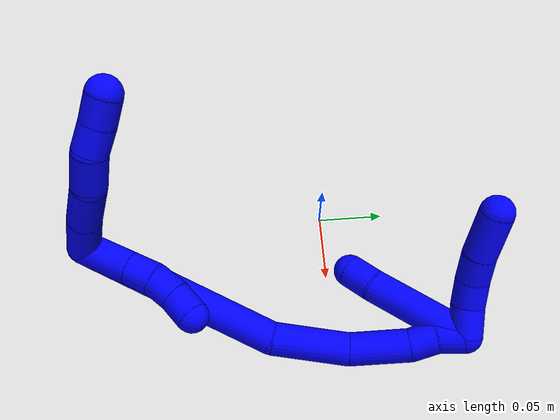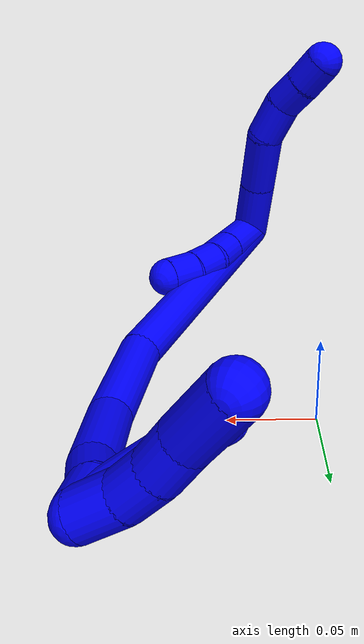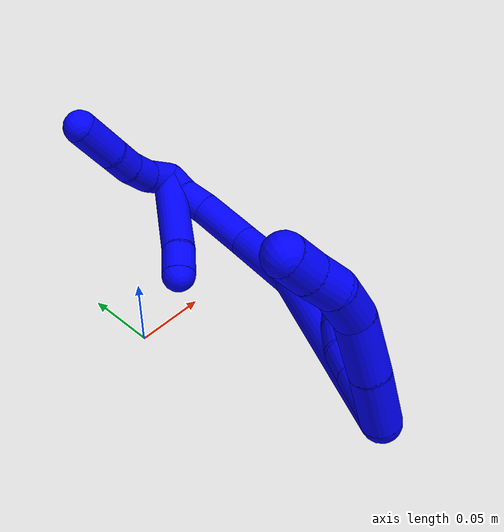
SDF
<sdf version="1.7">
 <world name="default">
  <model name="1">
   <static>0</static>
   <link name="1">
    <collision name="collision-cylinder-e_1_2_8">
     <pose>0.004787 -0.019817 -0.002743 1.70833 0.234888 0.269245</pose>
     <geometry><cylinder><radius>0.0125</radius><length>0.041141</length></cylinder></geometry>
     <surface>
      <friction><ode><mu>1.16</mu><mu2>1.16</mu2><slip1>0</slip1><slip2>0</slip2></ode></friction>
      <contact><ode><kp>1e+06</kp><kd>1</kd><max_vel>0</max_vel><min_depth>0.001</min_depth></ode></contact>
     </surface>
    </collision>
    <visual name="visual-cylinder-e_1_2_8">
     <pose>0.004787 -0.019817 -0.002743 1.70833 0.234888 0.269245</pose>
     <geometry><cylinder><radius>0.0125</radius><length>0.041141</length></cylinder></geometry>
     <material><ambient>0 0 1 1</ambient></material>
    </visual>
    <collision name="collision-cylinder-e_2_8_9">
     <pose>0.014733 -0.05925 -0.00943 1.7692 0.252291 0.307268</pose>
     <geometry><cylinder><radius>0.0125</radius><length>0.041328</length></cylinder></geometry>
     <surface>
      <friction><ode><mu>1.16</mu><mu2>1.16</mu2><slip1>0</slip1><slip2>0</slip2></ode></friction>
      <contact><ode><kp>1e+06</kp><kd>1</kd><max_vel>0</max_vel><min_depth>0.001</min_depth></ode></contact>
     </surface>
    </collision>
    <visual name="visual-cylinder-e_2_8_9">
     <pose>0.014733 -0.05925 -0.00943 1.7692 0.252291 0.307268</pose>
     <geometry><cylinder><radius>0.0125</radius><length>0.041328</length></cylinder></geometry>
     <material><ambient>0 0 1 1</ambient></material>
    </visual>
    <collision name="collision-cylinder-e_3_9_10">
     <pose>0.026624 -0.0906 -0.012927 1.53271 0.520671 0.502031</pose>
     <geometry><cylinder><radius>0.0125</radius><length>0.027069</length></cylinder></geometry>
     <surface>
      <friction><ode><mu>1.16</mu><mu2>1.16</mu2><slip1>0</slip1><slip2>0</slip2></ode></friction>
      <contact><ode><kp>1e+06</kp><kd>1</kd><max_vel>0</max_vel><min_depth>0.001</min_depth></ode></contact>
     </surface>
    </collision>
    <visual name="visual-cylinder-e_3_9_10">
     <pose>0.026624 -0.0906 -0.012927 1.53271 0.520671 0.502031</pose>
     <geometry><cylinder><radius>0.0125</radius><length>0.027069</length></cylinder></geometry>
     <material><ambient>0 0 1 1</ambient></material>
    </visual>
    <collision name="collision-cylinder-e_4_10_11">
     <pose>0.040709 -0.109262 -0.013082 1.65746 0.813072 0.877979</pose>
     <geometry><cylinder><radius>0.0125</radius><length>0.020241</length></cylinder></geometry>
     <surface>
      <friction><ode><mu>1.16</mu><mu2>1.16</mu2><slip1>0</slip1><slip2>0</slip2></ode></friction>
      <contact><ode><kp>1e+06</kp><kd>1</kd><max_vel>0</max_vel><min_depth>0.001</min_depth></ode></contact>
     </surface>
    </collision>
    <visual name="visual-cylinder-e_4_10_11">
     <pose>0.040709 -0.109262 -0.013082 1.65746 0.813072 0.877979</pose>
     <geometry><cylinder><radius>0.0125</radius><length>0.020241</length></cylinder></geometry>
     <material><ambient>0 0 1 1</ambient></material>
    </visual>
    <collision name="collision-cylinder-e_5_11_6">
     <pose>0.054942 -0.123596 -0.013895 1.59937 0.748619 0.768276</pose>
     <geometry><cylinder><radius>0.0125</radius><length>0.020221</length></cylinder></geometry>
     <surface>
      <friction><ode><mu>1.16</mu><mu2>1.16</mu2><slip1>0</slip1><slip2>0</slip2></ode></friction>
      <contact><ode><kp>1e+06</kp><kd>1</kd><max_vel>0</max_vel><min_depth>0.001</min_depth></ode></contact>
     </surface>
    </collision>
    <visual name="visual-cylinder-e_5_11_6">
     <pose>0.054942 -0.123596 -0.013895 1.59937 0.748619 0.768276</pose>
     <geometry><cylinder><radius>0.0125</radius><length>0.020221</length></cylinder></geometry>
     <material><ambient>0 0 1 1</ambient></material>
    </visual>
    <collision name="collision-cylinder-e_1_2_12">
     <pose>-0.000307 9.1e-05 -0.019431 -3.13691 -0.01582 2.56562</pose>
     <geometry><cylinder><radius>0.0125</radius><length>0.038868</length></cylinder></geometry>
     <surface>
      <friction><ode><mu>1.16</mu><mu2>1.16</mu2><slip1>0</slip1><slip2>0</slip2></ode></friction>
      <contact><ode><kp>1e+06</kp><kd>1</kd><max_vel>0</max_vel><min_depth>0.001</min_depth></ode></contact>
     </surface>
    </collision>
    <visual name="visual-cylinder-e_1_2_12">
     <pose>-0.000307 9.1e-05 -0.019431 -3.13691 -0.01582 2.56562</pose>
     <geometry><cylinder><radius>0.0125</radius><length>0.038868</length></cylinder></geometry>
     <material><ambient>0 0 1 1</ambient></material>
    </visual>
    <collision name="collision-cylinder-e_2_12_13">
     <pose>-0.000794 0.000221 -0.049072 -3.1378 -0.017573 2.71696</pose>
     <geometry><cylinder><radius>0.0125</radius><length>0.020422</length></cylinder></geometry>
     <surface>
      <friction><ode><mu>1.16</mu><mu2>1.16</mu2><slip1>0</slip1><slip2>0</slip2></ode></friction>
      <contact><ode><kp>1e+06</kp><kd>1</kd><max_vel>0</max_vel><min_depth>0.001</min_depth></ode></contact>
     </surface>
    </collision>
    <visual name="visual-cylinder-e_2_12_13">
     <pose>-0.000794 0.000221 -0.049072 -3.1378 -0.017573 2.71696</pose>
     <geometry><cylinder><radius>0.0125</radius><length>0.020422</length></cylinder></geometry>
     <material><ambient>0 0 1 1</ambient></material>
    </visual>
    <collision name="collision-cylinder-e_3_13_14">
     <pose>-0.00375 0.00043 -0.069183 -3.12437 -0.273331 3.01649</pose>
     <geometry><cylinder><radius>0.0125</radius><length>0.02057</length></cylinder></geometry>
     <surface>
      <friction><ode><mu>1.16</mu><mu2>1.16</mu2><slip1>0</slip1><slip2>0</slip2></ode></friction>
      <contact><ode><kp>1e+06</kp><kd>1</kd><max_vel>0</max_vel><min_depth>0.001</min_depth></ode></contact>
     </surface>
    </collision>
    <visual name="visual-cylinder-e_3_13_14">
     <pose>-0.00375 0.00043 -0.069183 -3.12437 -0.273331 3.01649</pose>
     <geometry><cylinder><radius>0.0125</radius><length>0.02057</length></cylinder></geometry>
     <material><ambient>0 0 1 1</ambient></material>
    </visual>
    <collision name="collision-cylinder-e_4_14_5">
     <pose>-0.010887 0.000157 -0.088151 3.09272 -0.447817 -2.92773</pose>
     <geometry><cylinder><radius>0.0125</radius><length>0.02014</length></cylinder></geometry>
     <surface>
      <friction><ode><mu>1.16</mu><mu2>1.16</mu2><slip1>0</slip1><slip2>0</slip2></ode></friction>
      <contact><ode><kp>1e+06</kp><kd>1</kd><max_vel>0</max_vel><min_depth>0.001</min_depth></ode></contact>
     </surface>
    </collision>
    <visual name="visual-cylinder-e_4_14_5">
     <pose>-0.010887 0.000157 -0.088151 3.09272 -0.447817 -2.92773</pose>
     <geometry><cylinder><radius>0.0125</radius><length>0.02014</length></cylinder></geometry>
     <material><ambient>0 0 1 1</ambient></material>
    </visual>
    <collision name="collision-cylinder-e_1_2_15">
     <pose>-0.001105 0.010851 -0.077009 -3.00161 -0.014209 0.201999</pose>
     <geometry><cylinder><radius>0.0125</radius><length>0.155556</length></cylinder></geometry>
     <surface>
      <friction><ode><mu>1.16</mu><mu2>1.16</mu2><slip1>0</slip1><slip2>0</slip2></ode></friction>
      <contact><ode><kp>1e+06</kp><kd>1</kd><max_vel>0</max_vel><min_depth>0.001</min_depth></ode></contact>
     </surface>
    </collision>
    <visual name="visual-cylinder-e_1_2_15">
     <pose>-0.001105 0.010851 -0.077009 -3.00161 -0.014209 0.201999</pose>
     <geometry><cylinder><radius>0.0125</radius><length>0.155556</length></cylinder></geometry>
     <material><ambient>0 0 1 1</ambient></material>
    </visual>
    <collision name="collision-cylinder-e_2_15_16">
     <pose>0.006124 0.024067 -0.181828 -3.05674 0.290176 -2.57608</pose>
     <geometry><cylinder><radius>0.0125</radius><length>0.058255</length></cylinder></geometry>
     <surface>
      <friction><ode><mu>1.16</mu><mu2>1.16</mu2><slip1>0</slip1><slip2>0</slip2></ode></friction>
      <contact><ode><kp>1e+06</kp><kd>1</kd><max_vel>0</max_vel><min_depth>0.001</min_depth></ode></contact>
     </surface>
    </collision>
    <visual name="visual-cylinder-e_2_15_16">
     <pose>0.006124 0.024067 -0.181828 -3.05674 0.290176 -2.57608</pose>
     <geometry><cylinder><radius>0.0125</radius><length>0.058255</length></cylinder></geometry>
     <material><ambient>0 0 1 1</ambient></material>
    </visual>
    <collision name="collision-cylinder-e_3_16_17">
     <pose>0.024255 0.023598 -0.229782 3.00184 0.44884 2.54655</pose>
     <geometry><cylinder><radius>0.0125</radius><length>0.045157</length></cylinder></geometry>
     <surface>
      <friction><ode><mu>1.16</mu><mu2>1.16</mu2><slip1>0</slip1><slip2>0</slip2></ode></friction>
      <contact><ode><kp>1e+06</kp><kd>1</kd><max_vel>0</max_vel><min_depth>0.001</min_depth></ode></contact>
     </surface>
    </collision>
    <visual name="visual-cylinder-e_3_16_17">
     <pose>0.024255 0.023598 -0.229782 3.00184 0.44884 2.54655</pose>
     <geometry><cylinder><radius>0.0125</radius><length>0.045157</length></cylinder></geometry>
     <material><ambient>0 0 1 1</ambient></material>
    </visual>
    <collision name="collision-cylinder-e_4_17_18">
     <pose>0.040412 0.018136 -0.257835 2.82074 0.651822 2.24849</pose>
     <geometry><cylinder><radius>0.0125</radius><length>0.020968</length></cylinder></geometry>
     <surface>
      <friction><ode><mu>1.16</mu><mu2>1.16</mu2><slip1>0</slip1><slip2>0</slip2></ode></friction>
      <contact><ode><kp>1e+06</kp><kd>1</kd><max_vel>0</max_vel><min_depth>0.001</min_depth></ode></contact>
     </surface>
    </collision>
    <visual name="visual-cylinder-e_4_17_18">
     <pose>0.040412 0.018136 -0.257835 2.82074 0.651822 2.24849</pose>
     <geometry><cylinder><radius>0.0125</radius><length>0.020968</length></cylinder></geometry>
     <material><ambient>0 0 1 1</ambient></material>
    </visual>
    <collision name="collision-cylinder-e_5_18_1">
     <pose>0.050272 0.013602 -0.27495 2.93747 0.356379 2.10745</pose>
     <geometry><cylinder><radius>0.0125</radius><length>0.020064</length></cylinder></geometry>
     <surface>
      <friction><ode><mu>1.16</mu><mu2>1.16</mu2><slip1>0</slip1><slip2>0</slip2></ode></friction>
      <contact><ode><kp>1e+06</kp><kd>1</kd><max_vel>0</max_vel><min_depth>0.001</min_depth></ode></contact>
     </surface>
    </collision>
    <visual name="visual-cylinder-e_5_18_1">
     <pose>0.050272 0.013602 -0.27495 2.93747 0.356379 2.10745</pose>
     <geometry><cylinder><radius>0.0125</radius><length>0.020064</length></cylinder></geometry>
     <material><ambient>0 0 1 1</ambient></material>
    </visual>
    <collision name="collision-cylinder-e_1_1_19">
     <pose>0.06022 0.01659 -0.246116 -0.127956 0.166563 -0.010696</pose>
     <geometry><cylinder><radius>0.0125</radius><length>0.077786</length></cylinder></geometry>
     <surface>
      <friction><ode><mu>1.16</mu><mu2>1.16</mu2><slip1>0</slip1><slip2>0</slip2></ode></friction>
      <contact><ode><kp>1e+06</kp><kd>1</kd><max_vel>0</max_vel><min_depth>0.001</min_depth></ode></contact>
     </surface>
    </collision>
    <visual name="visual-cylinder-e_1_1_19">
     <pose>0.06022 0.01659 -0.246116 -0.127956 0.166563 -0.010696</pose>
     <geometry><cylinder><radius>0.0125</radius><length>0.077786</length></cylinder></geometry>
     <material><ambient>0 0 1 1</ambient></material>
    </visual>
    <collision name="collision-cylinder-e_2_19_4">
     <pose>0.069533 0.024036 -0.197651 -0.240078 0.260831 -0.031638</pose>
     <geometry><cylinder><radius>0.0125</radius><length>0.022214</length></cylinder></geometry>
     <surface>
      <friction><ode><mu>1.16</mu><mu2>1.16</mu2><slip1>0</slip1><slip2>0</slip2></ode></friction>
      <contact><ode><kp>1e+06</kp><kd>1</kd><max_vel>0</max_vel><min_depth>0.001</min_depth></ode></contact>
     </surface>
    </collision>
    <visual name="visual-cylinder-e_2_19_4">
     <pose>0.069533 0.024036 -0.197651 -0.240078 0.260831 -0.031638</pose>
     <geometry><cylinder><radius>0.0125</radius><length>0.022214</length></cylinder></geometry>
     <material><ambient>0 0 1 1</ambient></material>
    </visual>
    <collision name="collision-cylinder-e_1_1_20">
     <pose>0.063409 0.005975 -0.280466 0.997913 0.955742 0.550156</pose>
     <geometry><cylinder><radius>0.0125</radius><length>0.023599</length></cylinder></geometry>
     <surface>
      <friction><ode><mu>1.16</mu><mu2>1.16</mu2><slip1>0</slip1><slip2>0</slip2></ode></friction>
      <contact><ode><kp>1e+06</kp><kd>1</kd><max_vel>0</max_vel><min_depth>0.001</min_depth></ode></contact>
     </surface>
    </collision>
    <visual name="visual-cylinder-e_1_1_20">
     <pose>0.063409 0.005975 -0.280466 0.997913 0.955742 0.550156</pose>
     <geometry><cylinder><radius>0.0125</radius><length>0.023599</length></cylinder></geometry>
     <material><ambient>0 0 1 1</ambient></material>
    </visual>
    <collision name="collision-cylinder-e_2_20_21">
     <pose>0.080239 -0.006958 -0.274491 1.26404 0.760187 0.569185</pose>
     <geometry><cylinder><radius>0.0125</radius><length>0.020876</length></cylinder></geometry>
     <surface>
      <friction><ode><mu>1.16</mu><mu2>1.16</mu2><slip1>0</slip1><slip2>0</slip2></ode></friction>
      <contact><ode><kp>1e+06</kp><kd>1</kd><max_vel>0</max_vel><min_depth>0.001</min_depth></ode></contact>
     </surface>
    </collision>
    <visual name="visual-cylinder-e_2_20_21">
     <pose>0.080239 -0.006958 -0.274491 1.26404 0.760187 0.569185</pose>
     <geometry><cylinder><radius>0.0125</radius><length>0.020876</length></cylinder></geometry>
     <material><ambient>0 0 1 1</ambient></material>
    </visual>
    <collision name="collision-cylinder-e_3_21_22">
     <pose>0.093502 -0.022529 -0.270614 1.38246 0.61965 0.517872</pose>
     <geometry><cylinder><radius>0.0125</radius><length>0.020907</length></cylinder></geometry>
     <surface>
      <friction><ode><mu>1.16</mu><mu2>1.16</mu2><slip1>0</slip1><slip2>0</slip2></ode></friction>
      <contact><ode><kp>1e+06</kp><kd>1</kd><max_vel>0</max_vel><min_depth>0.001</min_depth></ode></contact>
     </surface>
    </collision>
    <visual name="visual-cylinder-e_3_21_22">
     <pose>0.093502 -0.022529 -0.270614 1.38246 0.61965 0.517872</pose>
     <geometry><cylinder><radius>0.0125</radius><length>0.020907</length></cylinder></geometry>
     <material><ambient>0 0 1 1</ambient></material>
    </visual>
    <collision name="collision-cylinder-e_4_22_3">
     <pose>0.110248 -0.044499 -0.26838 1.52378 0.664577 0.636102</pose>
     <geometry><cylinder><radius>0.0125</radius><length>0.034618</length></cylinder></geometry>
     <surface>
      <friction><ode><mu>1.16</mu><mu2>1.16</mu2><slip1>0</slip1><slip2>0</slip2></ode></friction>
      <contact><ode><kp>1e+06</kp><kd>1</kd><max_vel>0</max_vel><min_depth>0.001</min_depth></ode></contact>
     </surface>
    </collision>
    <visual name="visual-cylinder-e_4_22_3">
     <pose>0.110248 -0.044499 -0.26838 1.52378 0.664577 0.636102</pose>
     <geometry><cylinder><radius>0.0125</radius><length>0.034618</length></cylinder></geometry>
     <material><ambient>0 0 1 1</ambient></material>
    </visual>
    <collision name="collision-sphere-3">
     <pose>0.120923 -0.058109 -0.26774 0 -0 0</pose>
     <geometry><sphere><radius>0.0125</radius></sphere></geometry>
     <surface>
      <friction><ode><mu>1.16</mu><mu2>1.16</mu2><slip1>0</slip1><slip2>0</slip2></ode></friction>
      <contact><ode><kp>1e+06</kp><kd>1</kd><max_vel>0</max_vel><min_depth>0.001</min_depth></ode></contact>
     </surface>
    </collision>
    <visual name="visual-sphere-3">
     <pose>0.120923 -0.058109 -0.26774 0 -0 0</pose>
     <geometry><sphere><radius>0.0125</radius></sphere></geometry>
     <material><ambient>0 0 1 1</ambient></material>
    </visual>
    <collision name="collision-sphere-22">
     <pose>0.099573 -0.030888 -0.269021 0 -0 0</pose>
     <geometry><sphere><radius>0.0125</radius></sphere></geometry>
     <surface>
      <friction><ode><mu>1.16</mu><mu2>1.16</mu2><slip1>0</slip1><slip2>0</slip2></ode></friction>
      <contact><ode><kp>1e+06</kp><kd>1</kd><max_vel>0</max_vel><min_depth>0.001</min_depth></ode></contact>
     </surface>
    </collision>
    <visual name="visual-sphere-22">
     <pose>0.099573 -0.030888 -0.269021 0 -0 0</pose>
     <geometry><sphere><radius>0.0125</radius></sphere></geometry>
     <material><ambient>0 0 1 1</ambient></material>
    </visual>
    <collision name="collision-sphere-21">
     <pose>0.087431 -0.014169 -0.272207 0 -0 0</pose>
     <geometry><sphere><radius>0.0125</radius></sphere></geometry>
     <surface>
      <friction><ode><mu>1.16</mu><mu2>1.16</mu2><slip1>0</slip1><slip2>0</slip2></ode></friction>
      <contact><ode><kp>1e+06</kp><kd>1</kd><max_vel>0</max_vel><min_depth>0.001</min_depth></ode></contact>
     </surface>
    </collision>
    <visual name="visual-sphere-21">
     <pose>0.087431 -0.014169 -0.272207 0 -0 0</pose>
     <geometry><sphere><radius>0.0125</radius></sphere></geometry>
     <material><ambient>0 0 1 1</ambient></material>
    </visual>
    <collision name="collision-sphere-20">
     <pose>0.073046 0.000254 -0.276776 0 -0 0</pose>
     <geometry><sphere><radius>0.0125</radius></sphere></geometry>
     <surface>
      <friction><ode><mu>1.16</mu><mu2>1.16</mu2><slip1>0</slip1><slip2>0</slip2></ode></friction>
      <contact><ode><kp>1e+06</kp><kd>1</kd><max_vel>0</max_vel><min_depth>0.001</min_depth></ode></contact>
     </surface>
    </collision>
    <visual name="visual-sphere-20">
     <pose>0.073046 0.000254 -0.276776 0 -0 0</pose>
     <geometry><sphere><radius>0.0125</radius></sphere></geometry>
     <material><ambient>0 0 1 1</ambient></material>
    </visual>
    <collision name="collision-sphere-4">
     <pose>0.072397 0.026588 -0.187227 0 -0 0</pose>
     <geometry><sphere><radius>0.0125</radius></sphere></geometry>
     <surface>
      <friction><ode><mu>1.16</mu><mu2>1.16</mu2><slip1>0</slip1><slip2>0</slip2></ode></friction>
      <contact><ode><kp>1e+06</kp><kd>1</kd><max_vel>0</max_vel><min_depth>0.001</min_depth></ode></contact>
     </surface>
    </collision>
    <visual name="visual-sphere-4">
     <pose>0.072397 0.026588 -0.187227 0 -0 0</pose>
     <geometry><sphere><radius>0.0125</radius></sphere></geometry>
     <material><ambient>0 0 1 1</ambient></material>
    </visual>
    <collision name="collision-sphere-6">
     <pose>0.061823 -0.131 -0.014107 0 -0 0</pose>
     <geometry><sphere><radius>0.0125</radius></sphere></geometry>
     <surface>
      <friction><ode><mu>1.16</mu><mu2>1.16</mu2><slip1>0</slip1><slip2>0</slip2></ode></friction>
      <contact><ode><kp>1e+06</kp><kd>1</kd><max_vel>0</max_vel><min_depth>0.001</min_depth></ode></contact>
     </surface>
    </collision>
    <visual name="visual-sphere-6">
     <pose>0.061823 -0.131 -0.014107 0 -0 0</pose>
     <geometry><sphere><radius>0.0125</radius></sphere></geometry>
     <material><ambient>0 0 1 1</ambient></material>
    </visual>
    <collision name="collision-sphere-11">
     <pose>0.04806 -0.116192 -0.013684 0 -0 0</pose>
     <geometry><sphere><radius>0.0125</radius></sphere></geometry>
     <surface>
      <friction><ode><mu>1.16</mu><mu2>1.16</mu2><slip1>0</slip1><slip2>0</slip2></ode></friction>
      <contact><ode><kp>1e+06</kp><kd>1</kd><max_vel>0</max_vel><min_depth>0.001</min_depth></ode></contact>
     </surface>
    </collision>
    <visual name="visual-sphere-11">
     <pose>0.04806 -0.116192 -0.013684 0 -0 0</pose>
     <geometry><sphere><radius>0.0125</radius></sphere></geometry>
     <material><ambient>0 0 1 1</ambient></material>
    </visual>
    <collision name="collision-sphere-10">
     <pose>0.033357 -0.102333 -0.01248 0 -0 0</pose>
     <geometry><sphere><radius>0.0125</radius></sphere></geometry>
     <surface>
      <friction><ode><mu>1.16</mu><mu2>1.16</mu2><slip1>0</slip1><slip2>0</slip2></ode></friction>
      <contact><ode><kp>1e+06</kp><kd>1</kd><max_vel>0</max_vel><min_depth>0.001</min_depth></ode></contact>
     </surface>
    </collision>
    <visual name="visual-sphere-10">
     <pose>0.033357 -0.102333 -0.01248 0 -0 0</pose>
     <geometry><sphere><radius>0.0125</radius></sphere></geometry>
     <material><ambient>0 0 1 1</ambient></material>
    </visual>
    <collision name="collision-sphere-9">
     <pose>0.019891 -0.078868 -0.013374 0 -0 0</pose>
     <geometry><sphere><radius>0.0125</radius></sphere></geometry>
     <surface>
      <friction><ode><mu>1.16</mu><mu2>1.16</mu2><slip1>0</slip1><slip2>0</slip2></ode></friction>
      <contact><ode><kp>1e+06</kp><kd>1</kd><max_vel>0</max_vel><min_depth>0.001</min_depth></ode></contact>
     </surface>
    </collision>
    <visual name="visual-sphere-9">
     <pose>0.019891 -0.078868 -0.013374 0 -0 0</pose>
     <geometry><sphere><radius>0.0125</radius></sphere></geometry>
     <material><ambient>0 0 1 1</ambient></material>
    </visual>
    <collision name="collision-sphere-2">
     <geometry><sphere><radius>0.0125</radius></sphere></geometry>
     <surface>
      <friction><ode><mu>1.16</mu><mu2>1.16</mu2><slip1>0</slip1><slip2>0</slip2></ode></friction>
      <contact><ode><kp>1e+06</kp><kd>1</kd><max_vel>0</max_vel><min_depth>0.001</min_depth></ode></contact>
     </surface>
    </collision>
    <visual name="visual-sphere-2">
     <geometry><sphere><radius>0.0125</radius></sphere></geometry>
     <material><ambient>0 0 1 1</ambient></material>
    </visual>
    <collision name="collision-sphere-19">
     <pose>0.066669 0.021485 -0.208075 0 -0 0</pose>
     <geometry><sphere><radius>0.0125</radius></sphere></geometry>
     <surface>
      <friction><ode><mu>1.16</mu><mu2>1.16</mu2><slip1>0</slip1><slip2>0</slip2></ode></friction>
      <contact><ode><kp>1e+06</kp><kd>1</kd><max_vel>0</max_vel><min_depth>0.001</min_depth></ode></contact>
     </surface>
    </collision>
    <visual name="visual-sphere-19">
     <pose>0.066669 0.021485 -0.208075 0 -0 0</pose>
     <geometry><sphere><radius>0.0125</radius></sphere></geometry>
     <material><ambient>0 0 1 1</ambient></material>
    </visual>
    <collision name="collision-sphere-8">
     <pose>0.009575 -0.039633 -0.005485 0 -0 0</pose>
     <geometry><sphere><radius>0.0125</radius></sphere></geometry>
     <surface>
      <friction><ode><mu>1.16</mu><mu2>1.16</mu2><slip1>0</slip1><slip2>0</slip2></ode></friction>
      <contact><ode><kp>1e+06</kp><kd>1</kd><max_vel>0</max_vel><min_depth>0.001</min_depth></ode></contact>
     </surface>
    </collision>
    <visual name="visual-sphere-8">
     <pose>0.009575 -0.039633 -0.005485 0 -0 0</pose>
     <geometry><sphere><radius>0.0125</radius></sphere></geometry>
     <material><ambient>0 0 1 1</ambient></material>
    </visual>
    <collision name="collision-sphere-12">
     <pose>-0.000615 0.000182 -0.038862 0 -0 0</pose>
     <geometry><sphere><radius>0.0125</radius></sphere></geometry>
     <surface>
      <friction><ode><mu>1.16</mu><mu2>1.16</mu2><slip1>0</slip1><slip2>0</slip2></ode></friction>
      <contact><ode><kp>1e+06</kp><kd>1</kd><max_vel>0</max_vel><min_depth>0.001</min_depth></ode></contact>
     </surface>
    </collision>
    <visual name="visual-sphere-12">
     <pose>-0.000615 0.000182 -0.038862 0 -0 0</pose>
     <geometry><sphere><radius>0.0125</radius></sphere></geometry>
     <material><ambient>0 0 1 1</ambient></material>
    </visual>
    <collision name="collision-sphere-13">
     <pose>-0.000974 0.000259 -0.059281 0 -0 0</pose>
     <geometry><sphere><radius>0.0125</radius></sphere></geometry>
     <surface>
      <friction><ode><mu>1.16</mu><mu2>1.16</mu2><slip1>0</slip1><slip2>0</slip2></ode></friction>
      <contact><ode><kp>1e+06</kp><kd>1</kd><max_vel>0</max_vel><min_depth>0.001</min_depth></ode></contact>
     </surface>
    </collision>
    <visual name="visual-sphere-13">
     <pose>-0.000974 0.000259 -0.059281 0 -0 0</pose>
     <geometry><sphere><radius>0.0125</radius></sphere></geometry>
     <material><ambient>0 0 1 1</ambient></material>
    </visual>
    <collision name="collision-sphere-14">
     <pose>-0.006526 0.000601 -0.079085 0 -0 0</pose>
     <geometry><sphere><radius>0.0125</radius></sphere></geometry>
     <surface>
      <friction><ode><mu>1.16</mu><mu2>1.16</mu2><slip1>0</slip1><slip2>0</slip2></ode></friction>
      <contact><ode><kp>1e+06</kp><kd>1</kd><max_vel>0</max_vel><min_depth>0.001</min_depth></ode></contact>
     </surface>
    </collision>
    <visual name="visual-sphere-14">
     <pose>-0.006526 0.000601 -0.079085 0 -0 0</pose>
     <geometry><sphere><radius>0.0125</radius></sphere></geometry>
     <material><ambient>0 0 1 1</ambient></material>
    </visual>
    <collision name="collision-sphere-5">
     <pose>-0.015247 -0.000286 -0.097217 0 -0 0</pose>
     <geometry><sphere><radius>0.0125</radius></sphere></geometry>
     <surface>
      <friction><ode><mu>1.16</mu><mu2>1.16</mu2><slip1>0</slip1><slip2>0</slip2></ode></friction>
      <contact><ode><kp>1e+06</kp><kd>1</kd><max_vel>0</max_vel><min_depth>0.001</min_depth></ode></contact>
     </surface>
    </collision>
    <visual name="visual-sphere-5">
     <pose>-0.015247 -0.000286 -0.097217 0 -0 0</pose>
     <geometry><sphere><radius>0.0125</radius></sphere></geometry>
     <material><ambient>0 0 1 1</ambient></material>
    </visual>
    <collision name="collision-sphere-15">
     <pose>-0.00221 0.021701 -0.154019 0 -0 0</pose>
     <geometry><sphere><radius>0.0125</radius></sphere></geometry>
     <surface>
      <friction><ode><mu>1.16</mu><mu2>1.16</mu2><slip1>0</slip1><slip2>0</slip2></ode></friction>
      <contact><ode><kp>1e+06</kp><kd>1</kd><max_vel>0</max_vel><min_depth>0.001</min_depth></ode></contact>
     </surface>
    </collision>
    <visual name="visual-sphere-15">
     <pose>-0.00221 0.021701 -0.154019 0 -0 0</pose>
     <geometry><sphere><radius>0.0125</radius></sphere></geometry>
     <material><ambient>0 0 1 1</ambient></material>
    </visual>
    <collision name="collision-sphere-16">
     <pose>0.014458 0.026432 -0.209638 0 -0 0</pose>
     <geometry><sphere><radius>0.0125</radius></sphere></geometry>
     <surface>
      <friction><ode><mu>1.16</mu><mu2>1.16</mu2><slip1>0</slip1><slip2>0</slip2></ode></friction>
      <contact><ode><kp>1e+06</kp><kd>1</kd><max_vel>0</max_vel><min_depth>0.001</min_depth></ode></contact>
     </surface>
    </collision>
    <visual name="visual-sphere-16">
     <pose>0.014458 0.026432 -0.209638 0 -0 0</pose>
     <geometry><sphere><radius>0.0125</radius></sphere></geometry>
     <material><ambient>0 0 1 1</ambient></material>
    </visual>
    <collision name="collision-sphere-17">
     <pose>0.034052 0.020765 -0.249925 0 -0 0</pose>
     <geometry><sphere><radius>0.0125</radius></sphere></geometry>
     <surface>
      <friction><ode><mu>1.16</mu><mu2>1.16</mu2><slip1>0</slip1><slip2>0</slip2></ode></friction>
      <contact><ode><kp>1e+06</kp><kd>1</kd><max_vel>0</max_vel><min_depth>0.001</min_depth></ode></contact>
     </surface>
    </collision>
    <visual name="visual-sphere-17">
     <pose>0.034052 0.020765 -0.249925 0 -0 0</pose>
     <geometry><sphere><radius>0.0125</radius></sphere></geometry>
     <material><ambient>0 0 1 1</ambient></material>
    </visual>
    <collision name="collision-sphere-18">
     <pose>0.046772 0.015508 -0.265744 0 -0 0</pose>
     <geometry><sphere><radius>0.0125</radius></sphere></geometry>
     <surface>
      <friction><ode><mu>1.16</mu><mu2>1.16</mu2><slip1>0</slip1><slip2>0</slip2></ode></friction>
      <contact><ode><kp>1e+06</kp><kd>1</kd><max_vel>0</max_vel><min_depth>0.001</min_depth></ode></contact>
     </surface>
    </collision>
    <visual name="visual-sphere-18">
     <pose>0.046772 0.015508 -0.265744 0 -0 0</pose>
     <geometry><sphere><radius>0.0125</radius></sphere></geometry>
     <material><ambient>0 0 1 1</ambient></material>
    </visual>
    <collision name="collision-sphere-1">
     <pose>0.053772 0.011696 -0.284157 0 -0 0</pose>
     <geometry><sphere><radius>0.0125</radius></sphere></geometry>
     <surface>
      <friction><ode><mu>1.16</mu><mu2>1.16</mu2><slip1>0</slip1><slip2>0</slip2></ode></friction>
      <contact><ode><kp>1e+06</kp><kd>1</kd><max_vel>0</max_vel><min_depth>0.001</min_depth></ode></contact>
     </surface>
    </collision>
    <visual name="visual-sphere-1">
     <pose>0.053772 0.011696 -0.284157 0 -0 0</pose>
     <geometry><sphere><radius>0.0125</radius></sphere></geometry>
     <material><ambient>0 0 1 1</ambient></material>
    </visual>
    <inertial>
     <pose>0.028593 -0.00772 -0.134743 0 -0 0</pose>
     <mass>0.75</mass>
     <inertia>
      <ixx>0.000437</ixx>
      <ixy>0</ixy>
      <ixz>0</ixz>
      <iyy>-0.000162</iyy>
      <iyz>0</iyz>
      <izz>-7.3e-05</izz>
     </inertia>
    </inertial>
   </link>
   <pose>0.027429 -0.181115 0.041562 -1.55099 -0.033523 2.6499</pose>
  </model>
 </world>
</sdf>
